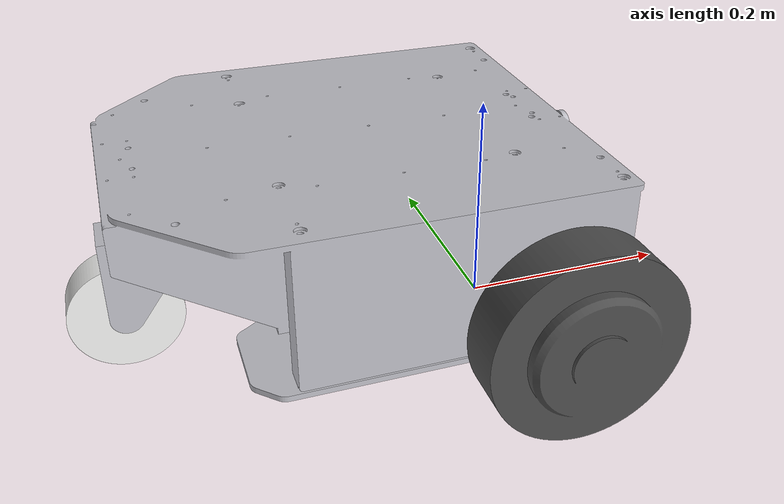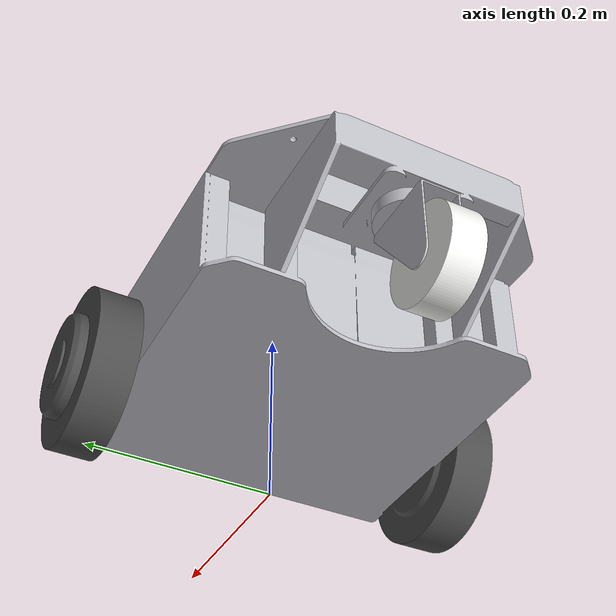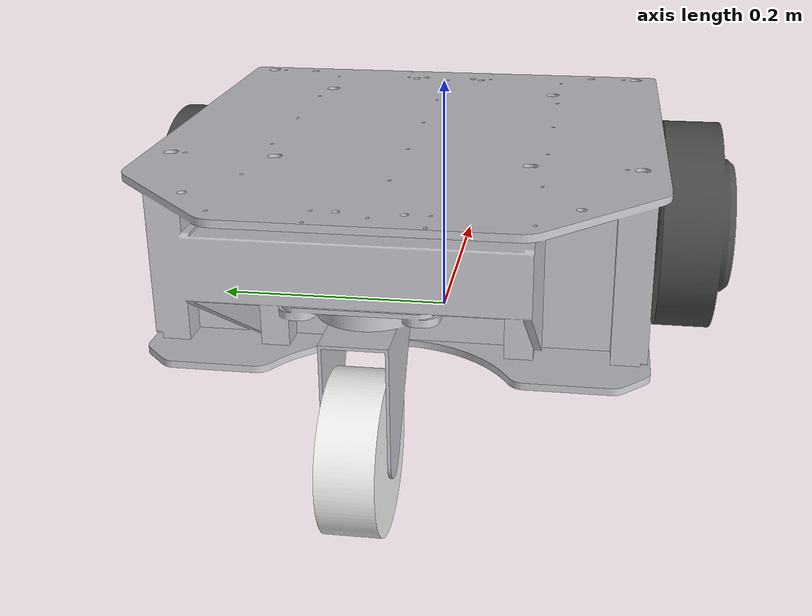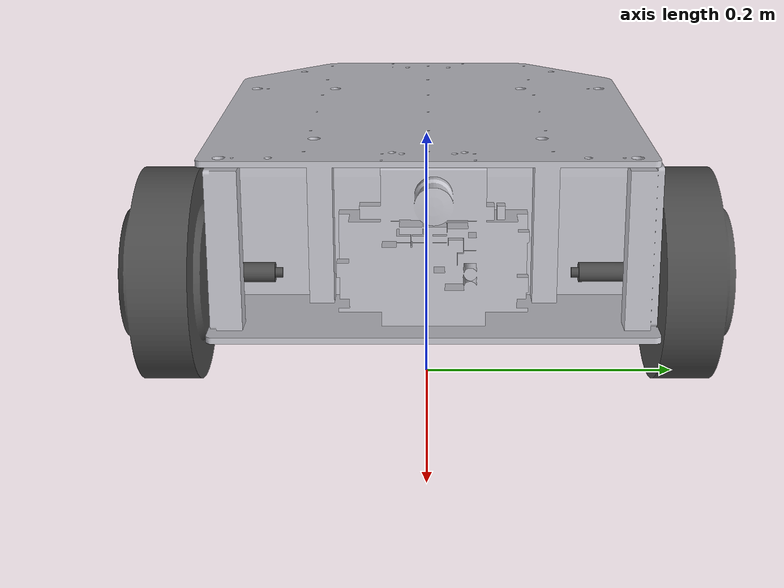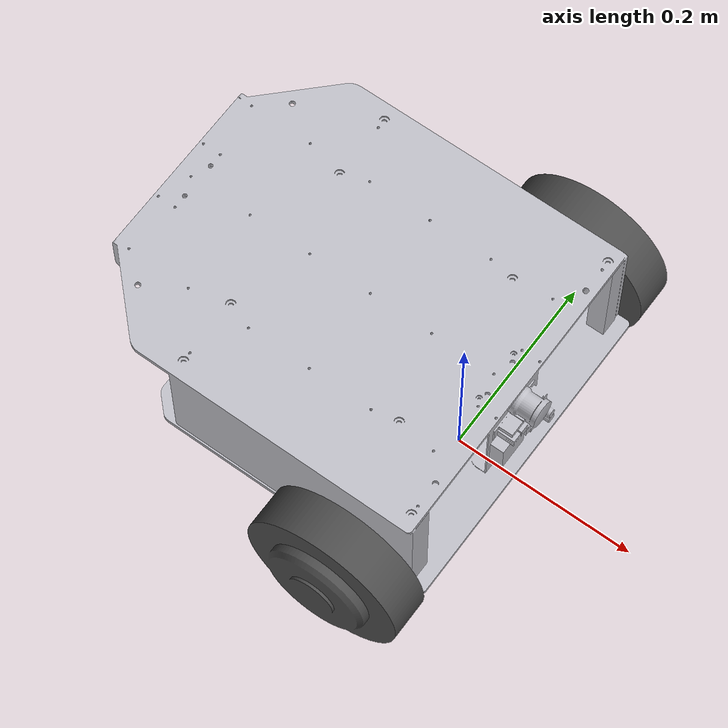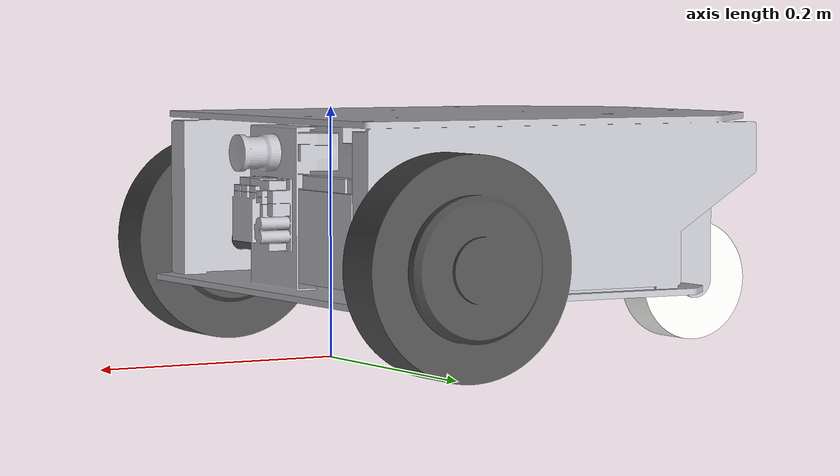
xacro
<?xml version="1.0"?>
<robot name="f120a" xmlns:xacro="http://www.ros.org/wiki/xacro">

  <xacro:arg name="use_ros2_control" default="true" />
  <xacro:arg name="lidar" default="true" />
  <xacro:property name="tg30_enabled" value="false" />

  <xacro:include filename="$(find megarover_description)/urdf/materials.xacro" />
  <xacro:include filename="$(find megarover_description)/urdf/f120a.gazebo" />
  <xacro:if value="$(arg use_ros2_control)">
    <xacro:include filename="$(find megarover_description)/urdf/f120a_ros2_control.xacro" />
  </xacro:if>

  <!-- OPTION  LRF TG30 -->

  <!-- OPTION  bumper sensor -->

  <!-- OPTION  Intel Realsense depth camera D435i (camera stay is required)  -->

  <!-- OPTION  AMIR 740 (disabled by default because of interference with camera stay)-->

  <link name="base_footprint" />

  <joint name="base_joint" type="fixed">
    <parent link="base_footprint" />
    <child link="base_link" />
    <origin xyz="-0.108 0 0" rpy="0 0 0" />
  </joint>

  <link name="base_link">
    <inertial>
      <origin xyz="-0.013369162863708595 0.003967105997105071 0.13087762523743113" rpy="0 0 0" />
      <mass value="6.991126256639111" />
      <inertia ixx="0.10171936472593801" iyy="0.12309534845763971" izz="0.1862309757885538"
        ixy="-3.9446830044943695e-05" iyz="0.00020498239448746465"
        ixz="0.012608115312944097" />
    </inertial>
    <visual>
      <origin xyz="0 0 0" rpy="0 0 0" />
      <geometry>
        <mesh filename="package://megarover_description/meshes/f120a/base_link.stl" scale="0.001 0.001 0.001" />
      </geometry>
      <material name="silver" />
    </visual>
    <collision>
      <origin xyz="0 0 0" rpy="0 0 0" />
      <geometry>
        <mesh filename="package://megarover_description/meshes/f120a/base_link.stl" scale="0.001 0.001 0.001" />
      </geometry>
    </collision>
  </link>

  <joint name="battery_joint" type="fixed">
    <origin xyz="0.0 0.005 0.0" rpy="0 0 0" />
    <parent link="base_link" />
    <child link="Battery" />
  </joint>

  <link name="Battery">
    <inertial>
      <origin xyz="-0.00047690262730757597 -1.214306433183765e-17 0.12084712924012407" rpy="0 0 0" />
      <mass value="14.366266000000003" />
      <inertia ixx="0.149967155276439" iyy="0.05463969367969923" izz="0.16733910801756052"
        ixy="4.588208068687094e-17" iyz="2.2551405187698492e-17" ixz="0.0003847207249658767" />
    </inertial>
    <visual>
      <origin xyz="0.0 -0.005 0.0" rpy="0 0 0" />
      <geometry>
        <mesh filename="package://megarover_description/meshes/f120a/Battery.stl" scale="0.001 0.001 0.001" />
      </geometry>
      <material name="silver" />
    </visual>
    <collision>
      <origin xyz="0.0 -0.005 0.0" rpy="0 0 0" />
      <geometry>
        <mesh filename="package://megarover_description/meshes/f120a/Battery.stl" scale="0.001 0.001 0.001" />
      </geometry>
    </collision>
  </link>

  <joint name="caster_swivel_joint" type="continuous">
    <origin xyz="-0.185 0.005 0.141" rpy="0 0 0" />
    <parent link="base_link" />
    <child link="Caster_Frame" />
    <axis xyz="0.0 0.0 1.0" />
    <limit effort="100.0" velocity="100.0" />
  </joint>

  <link name="Caster_Frame">
    <inertial>
      <origin xyz="-0.007262242104825234 -1.734723475976807e-16 -0.01913205916374887" rpy="0 0 0" />
      <mass value="0.2102704532022103" />
      <inertia ixx="0.00016899802664020747" iyy="0.00020027057626632871" izz="0.0001547263035165296"
        ixy="3.2526065174565133e-19" iyz="-1.463672932855431e-18" ixz="-5.075055445010607e-05" />
    </inertial>
    <visual>
      <origin xyz="0.185 -0.005 -0.141" rpy="0 0 0" />
      <geometry>
        <mesh filename="package://megarover_description/meshes/f120a/Caster_Frame.stl" scale="0.001 0.001 0.001" />
      </geometry>
      <material name="silver" />
    </visual>
    <collision>
      <origin xyz="0.185 -0.005 -0.141" rpy="0 0 0" />
      <geometry>
        <mesh filename="package://megarover_description/meshes/f120a/Caster_Frame.stl" scale="0.001 0.001 0.001" />
      </geometry>
    </collision>
  </link>

  <joint name="caster_wheel_joint" type="continuous">
    <origin xyz="-0.04 -0.0205 -0.091" rpy="0 0 0" />
    <parent link="Caster_Frame" />
    <child link="Caster_Wheel" />
    <axis xyz="0.0 -1.0 0.0" />
    <limit effort="100.0" velocity="100.0" />
  </joint>

  <link name="Caster_Wheel">
    <inertial>
      <origin xyz="2.7755575615628914e-17 0.02049999999999995 6.938893903907228e-18" rpy="0 0 0" />
      <mass value="0.2913827186204193" />
      <inertia ixx="0.00021185951833023898" iyy="0.00036422839827547626" izz="0.00021185951833024332"
        ixy="2.168404344971009e-19" iyz="1.8973538018496328e-19" ixz="-3.0357660829594124e-18" />
    </inertial>
    <visual>
      <origin xyz="0.225 0.0155 -0.05" rpy="0 0 0" />
      <geometry>
        <mesh filename="package://megarover_description/meshes/f120a/Caster_Wheel.stl" scale="0.001 0.001 0.001" />
      </geometry>
      <material name="caster_wheel">
        <color rgba="0.960784 0.960784 0.952941 1" />
      </material>
    </visual>
    <collision>
      <origin xyz="0.225 0.0155 -0.05" rpy="0 0 0" />
      <geometry>
        <mesh filename="package://megarover_description/meshes/f120a/Caster_Wheel.stl" scale="0.001 0.001 0.001" />
      </geometry>
    </collision>
  </link>

  <joint name="right_wheel_joint" type="continuous">
    <origin xyz="0.108 -0.202 0.085" rpy="0 0 0" />
    <parent link="base_link" />
    <child link="right_wheel_1" />
    <axis xyz="0.0 1.0 0.0" />
  </joint>

  <link name="right_wheel_1">
    <inertial>
      <origin xyz="0 0 0" rpy="0 0 0" />
      <mass value="3.3" />
      <inertia ixx="6.647813e-03" iyy="1.192125e-02" izz="6.647813e-03"
        ixy="0.0" iyz="0.0"
        ixz="0.0" />
    </inertial>
    <visual>
      <origin xyz="-0.108 0.197 -0.085" rpy="0 0 0" />
      <geometry>
        <mesh filename="package://megarover_description/meshes/f120a/right_wheel_1.stl" scale="0.001 0.001 0.001" />
      </geometry>
      <material name="dark_grey" />
    </visual>
    <collision>
      <origin xyz="-0.108 0.197 -0.085" rpy="0 0 0" />
      <geometry>
        <mesh filename="package://megarover_description/meshes/f120a/right_wheel_1.stl" scale="0.001 0.001 0.001" />
      </geometry>
    </collision>
  </link>

  <joint name="left_wheel_joint" type="continuous">
    <origin xyz="0.108 0.202 0.085" rpy="0 0 0" />
    <parent link="base_link" />
    <child link="left_wheel_1" />
    <axis xyz="0.0 1.0 0.0" />
  </joint>

  <link name="left_wheel_1">
    <inertial>
      <origin xyz="0 0 0" rpy="0 0 0" />
      <mass value="3.3" />
      <inertia ixx="6.647813e-03" iyy="1.192125e-02" izz="6.647813e-03"
        ixy="0.0" iyz="0.0"
        ixz="0.0" />
    </inertial>
    <visual>
      <origin xyz="-0.108297 -0.202941 -0.087693" rpy="0 0 0" />
      <geometry>
        <mesh filename="package://megarover_description/meshes/f120a/left_wheel_1.stl" scale="0.001 0.001 0.001" />
      </geometry>
      <material name="dark_grey" />
    </visual>
    <collision>
      <origin xyz="-0.108297 -0.202941 -0.087693" rpy="0 0 0" />
      <geometry>
        <mesh filename="package://megarover_description/meshes/f120a/left_wheel_1.stl" scale="0.001 0.001 0.001" />
      </geometry>
    </collision>
  </link>

  <xacro:gazebo_sensors />
</robot>

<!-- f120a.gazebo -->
<robot name="f120a" xmlns:xacro="http://www.ros.org/wiki/xacro">

  <xacro:if value="$(arg use_ros2_control)">
    <gazebo>
      <plugin name="gz_ros2_control::GazeboSimROS2ControlPlugin" filename="gz_ros2_control-system">
        <parameters>$(find megarover_description)/params/controllers.yaml</parameters>
      </plugin>
      <plugin name="gz::sim::systems::OdometryPublisher" filename="gz-sim-odometry-publisher-system">
        <odom_frame>odom</odom_frame>
        <robot_base_frame>base_footprint</robot_base_frame>
        <odom_topic>/sim_odom</odom_topic>
        <odom_publish_frequency>50</odom_publish_frequency>
        <dimensions>2</dimensions>
      </plugin>
    </gazebo>
  </xacro:if>

  <gazebo reference="base_link">
    <mu1>0.05</mu1>
    <mu2>0.05</mu2>
  </gazebo>

  <gazebo reference="right_wheel_1">
    <mu1>1.5</mu1>
    <mu2>0.8</mu2>
  </gazebo>

  <gazebo reference="left_wheel_1">
    <mu1>1.5</mu1>
    <mu2>0.8</mu2>
  </gazebo>

  <!-- Existing model-only scanner, declared natively when TG30 is absent. -->
  <xacro:macro name="gazebo_sensors" params="">
    <xacro:if value="$(arg use_ros2_control)">
      <xacro:if value="$(arg lidar)">
        <xacro:unless value="${tg30_enabled}">
          <link name="virtual_lidar_link" />
          <joint name="virtual_lidar_joint" type="fixed">
            <parent link="base_link" /><child link="virtual_lidar_link" />
            <origin xyz="0.15 0 0.25" rpy="0 0 0" />
          </joint>
          <gazebo reference="base_link">
            <sensor name="virtual_lidar" type="gpu_lidar">
              <pose>0.15 0 0.25 0 0 0</pose>
              <topic>/scan</topic><gz_frame_id>virtual_lidar_link</gz_frame_id>
              <update_rate>10</update_rate><always_on>true</always_on>
              <lidar>
                <scan><horizontal>
                  <samples>720</samples><resolution>1</resolution>
                  <min_angle>-3.14159265</min_angle><max_angle>3.14159265</max_angle>
                </horizontal></scan>
                <range><min>0.05</min><max>30</max><resolution>0.01</resolution></range>
              </lidar>
            </sensor>
          </gazebo>
        </xacro:unless>
      </xacro:if>
    </xacro:if>
  </xacro:macro>

</robot>
